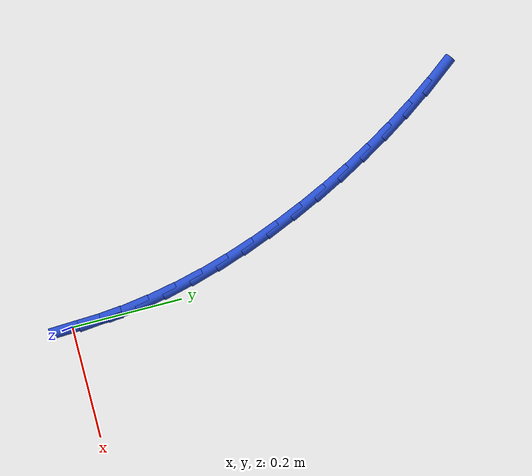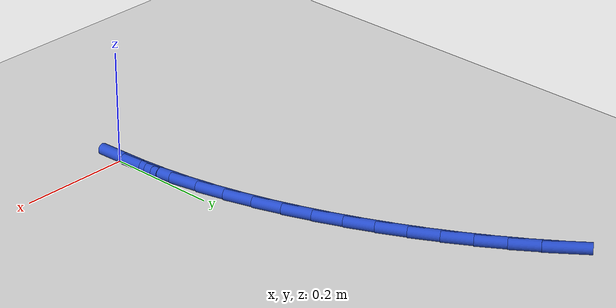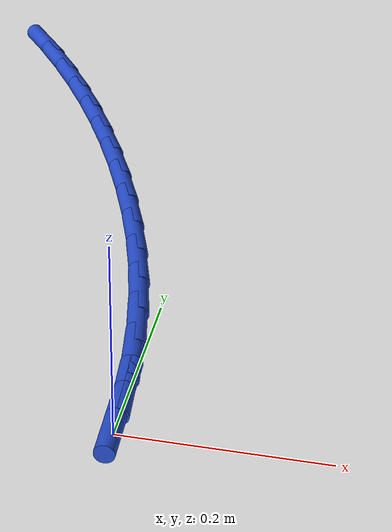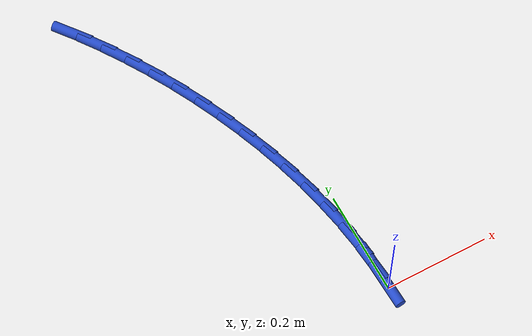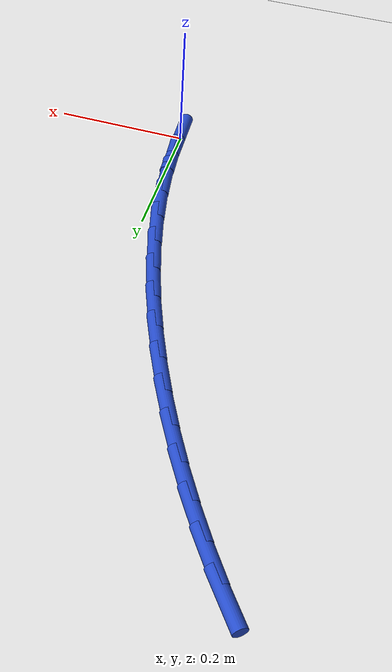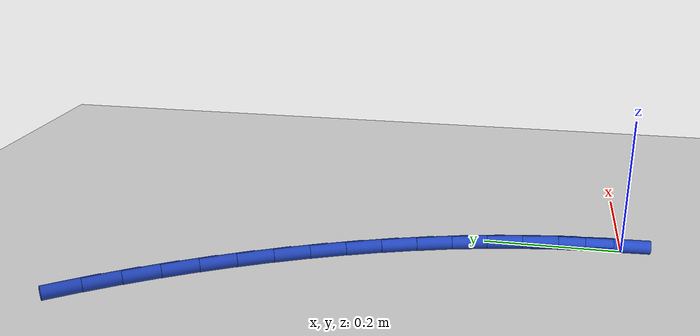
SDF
<sdf version="1.6">
 <world name="default">
  <model name="ground_plane">
   <static>1</static>
   <link name="link">
    <collision name="collision">
     <geometry><plane><normal>0 0 1</normal><size>100 100</size></plane></geometry>
     <surface><friction><ode><mu>100</mu><mu2>50</mu2></ode></friction></surface>
    </collision>
    <visual name="visual">
     <cast_shadows>0</cast_shadows>
     <geometry><plane><normal>0 0 1</normal><size>100 100</size></plane></geometry>
     <material>
      <script><uri>file://media/materials/scripts/gazebo.material</uri><name>Gazebo/WhiteGlow</name></script>
     </material>
    </visual>
   </link>
  </model>
  <model name="line">
   <link name="link_1">
    <pose>-0.0021841628093463516 0.05283429839335736 0.01 0 1.57 -1.4750954064875892</pose>
    <collision name="collision">
     <geometry><cylinder><radius>0.01</radius><length>0.08</length></cylinder></geometry>
    </collision>
    <visual name="visual">
     <material>
      <script><name>Gazebo/Blue</name><uri>file://media/materials/scripts/gazebo.material</uri></script>
     </material>
     <geometry><cylinder><radius>0.01</radius><length>0.08</length></cylinder></geometry>
    </visual>
   </link>
   <link name="link_2">
    <pose>-0.0072178018318670885 0.10527122873435651 0.01 0 1.57 -1.4231612417951556</pose>
    <collision name="collision">
     <geometry><cylinder><radius>0.01</radius><length>0.08</length></cylinder></geometry>
    </collision>
    <visual name="visual">
     <material>
      <script><name>Gazebo/Blue</name><uri>file://media/materials/scripts/gazebo.material</uri></script>
     </material>
     <geometry><cylinder><radius>0.01</radius><length>0.08</length></cylinder></geometry>
    </visual>
   </link>
   <link name="link_3">
    <pose>-0.014951831685492925 0.1572761937106726 0.01 0 1.57 -1.3738176894232064</pose>
    <collision name="collision">
     <geometry><cylinder><radius>0.01</radius><length>0.08</length></cylinder></geometry>
    </collision>
    <visual name="visual">
     <material>
      <script><name>Gazebo/Blue</name><uri>file://media/materials/scripts/gazebo.material</uri></script>
     </material>
     <geometry><cylinder><radius>0.01</radius><length>0.08</length></cylinder></geometry>
    </visual>
   </link>
   <link name="link_4">
    <pose>-0.025237166988154536 0.20881459600998065 0.01 0 1.57 -1.3271413367178064</pose>
    <collision name="collision">
     <geometry><cylinder><radius>0.01</radius><length>0.08</length></cylinder></geometry>
    </collision>
    <visual name="visual">
     <material>
      <script><name>Gazebo/Blue</name><uri>file://media/materials/scripts/gazebo.material</uri></script>
     </material>
     <geometry><cylinder><radius>0.01</radius><length>0.08</length></cylinder></geometry>
    </visual>
   </link>
   <link name="link_5">
    <pose>-0.03792472235778264 0.25985183831995606 0.01 0 1.57 -1.283154380369551</pose>
    <collision name="collision">
     <geometry><cylinder><radius>0.01</radius><length>0.08</length></cylinder></geometry>
    </collision>
    <visual name="visual">
     <material>
      <script><name>Gazebo/Blue</name><uri>file://media/materials/scripts/gazebo.material</uri></script>
     </material>
     <geometry><cylinder><radius>0.01</radius><length>0.08</length></cylinder></geometry>
    </visual>
   </link>
   <link name="link_6">
    <pose>-0.052865412412307924 0.3103533233282738 0.01 0 1.57 -1.2418347899871558</pose>
    <collision name="collision">
     <geometry><cylinder><radius>0.01</radius><length>0.08</length></cylinder></geometry>
    </collision>
    <visual name="visual">
     <material>
      <script><name>Gazebo/Blue</name><uri>file://media/materials/scripts/gazebo.material</uri></script>
     </material>
     <geometry><cylinder><radius>0.01</radius><length>0.08</length></cylinder></geometry>
    </visual>
   </link>
   <link name="link_7">
    <pose>-0.06991015176966103 0.36028445372260887 0.01 0 1.57 -1.203126390044786</pose>
    <collision name="collision">
     <geometry><cylinder><radius>0.01</radius><length>0.08</length></cylinder></geometry>
    </collision>
    <visual name="visual">
     <material>
      <script><name>Gazebo/Blue</name><uri>file://media/materials/scripts/gazebo.material</uri></script>
     </material>
     <geometry><cylinder><radius>0.01</radius><length>0.08</length></cylinder></geometry>
    </visual>
   </link>
   <link name="link_8">
    <pose>-0.08890985504777274 0.4096106321906368 0.01 0 1.57 -1.166894859681101</pose>
    <collision name="collision">
     <geometry><cylinder><radius>0.01</radius><length>0.08</length></cylinder></geometry>
    </collision>
    <visual name="visual">
     <material>
      <script><name>Gazebo/Blue</name><uri>file://media/materials/scripts/gazebo.material</uri></script>
     </material>
     <geometry><cylinder><radius>0.01</radius><length>0.08</length></cylinder></geometry>
    </visual>
   </link>
   <link name="link_9">
    <pose>-0.10971800299744766 0.45829608380879305 0.01 0 1.57 -1.131835386523721</pose>
    <collision name="collision">
     <geometry><cylinder><radius>0.01</radius><length>0.08</length></cylinder></geometry>
    </collision>
    <visual name="visual">
     <material>
      <script><name>Gazebo/Blue</name><uri>file://media/materials/scripts/gazebo.material</uri></script>
     </material>
     <geometry><cylinder><radius>0.01</radius><length>0.08</length></cylinder></geometry>
    </visual>
   </link>
   <link name="link_10">
    <pose>-0.13224623940071267 0.5062783423469224 0.01 0 1.57 -1.096649820325048</pose>
    <collision name="collision">
     <geometry><cylinder><radius>0.01</radius><length>0.08</length></cylinder></geometry>
    </collision>
    <visual name="visual">
     <material>
      <script><name>Gazebo/Blue</name><uri>file://media/materials/scripts/gazebo.material</uri></script>
     </material>
     <geometry><cylinder><radius>0.01</radius><length>0.08</length></cylinder></geometry>
    </visual>
   </link>
   <link name="link_11">
    <pose>-0.15646389834648894 0.553468467203844 0.01 0 1.57 -1.061188693983388</pose>
    <collision name="collision">
     <geometry><cylinder><radius>0.01</radius><length>0.08</length></cylinder></geometry>
    </collision>
    <visual name="visual">
     <material>
      <script><name>Gazebo/Blue</name><uri>file://media/materials/scripts/gazebo.material</uri></script>
     </material>
     <geometry><cylinder><radius>0.01</radius><length>0.08</length></cylinder></geometry>
    </visual>
   </link>
   <link name="link_12">
    <pose>-0.18234278550973193 0.5997763835551553 0.01 0 1.57 -1.025355406005655</pose>
    <collision name="collision">
     <geometry><cylinder><radius>0.01</radius><length>0.08</length></cylinder></geometry>
    </collision>
    <visual name="visual">
     <material>
      <script><name>Gazebo/Blue</name><uri>file://media/materials/scripts/gazebo.material</uri></script>
     </material>
     <geometry><cylinder><radius>0.01</radius><length>0.08</length></cylinder></geometry>
    </visual>
   </link>
   <link name="link_13">
    <pose>-0.20985470656539704 0.6451120165764535 0.01 0 1.57 -0.9890550751553886</pose>
    <collision name="collision">
     <geometry><cylinder><radius>0.01</radius><length>0.08</length></cylinder></geometry>
    </collision>
    <visual name="visual">
     <material>
      <script><name>Gazebo/Blue</name><uri>file://media/materials/scripts/gazebo.material</uri></script>
     </material>
     <geometry><cylinder><radius>0.01</radius><length>0.08</length></cylinder></geometry>
    </visual>
   </link>
   <link name="link_14">
    <pose>-0.23897146718843976 0.6893852914433367 0.01 0 1.57 -0.9521948671829819</pose>
    <collision name="collision">
     <geometry><cylinder><radius>0.01</radius><length>0.08</length></cylinder></geometry>
    </collision>
    <visual name="visual">
     <material>
      <script><name>Gazebo/Blue</name><uri>file://media/materials/scripts/gazebo.material</uri></script>
     </material>
     <geometry><cylinder><radius>0.01</radius><length>0.08</length></cylinder></geometry>
    </visual>
   </link>
   <link name="link_15">
    <pose>-0.2696648730538156 0.7325061333314024 0.01 0 1.57 -0.9146844777312849</pose>
    <collision name="collision">
     <geometry><cylinder><radius>0.01</radius><length>0.08</length></cylinder></geometry>
    </collision>
    <visual name="visual">
     <material>
      <script><name>Gazebo/Blue</name><uri>file://media/materials/scripts/gazebo.material</uri></script>
     </material>
     <geometry><cylinder><radius>0.01</radius><length>0.08</length></cylinder></geometry>
    </visual>
   </link>
   <link name="link_140">
    <pose>-1.734723475976807e-17 1.3877787807814457e-17 0.01 0 1.57 -1.5288786766985973</pose>
    <collision name="collision">
     <geometry><cylinder><radius>0.01</radius><length>0.08</length></cylinder></geometry>
    </collision>
    <visual name="visual">
     <material>
      <script><name>Gazebo/Blue</name><uri>file://media/materials/scripts/gazebo.material</uri></script>
     </material>
     <geometry><cylinder><radius>0.01</radius><length>0.08</length></cylinder></geometry>
    </visual>
   </link>
   <link name="link_141">
    <pose>-0.0022141969741137496 0.052791603769681124 0.01 0 1.57 -1.5288786766985973</pose>
    <collision name="collision">
     <geometry><cylinder><radius>0.01</radius><length>0.08</length></cylinder></geometry>
    </collision>
    <visual name="visual">
     <material>
      <script><name>Gazebo/Blue</name><uri>file://media/materials/scripts/gazebo.material</uri></script>
     </material>
     <geometry><cylinder><radius>0.01</radius><length>0.08</length></cylinder></geometry>
    </visual>
   </link>
  </model>
 </world>
</sdf>
